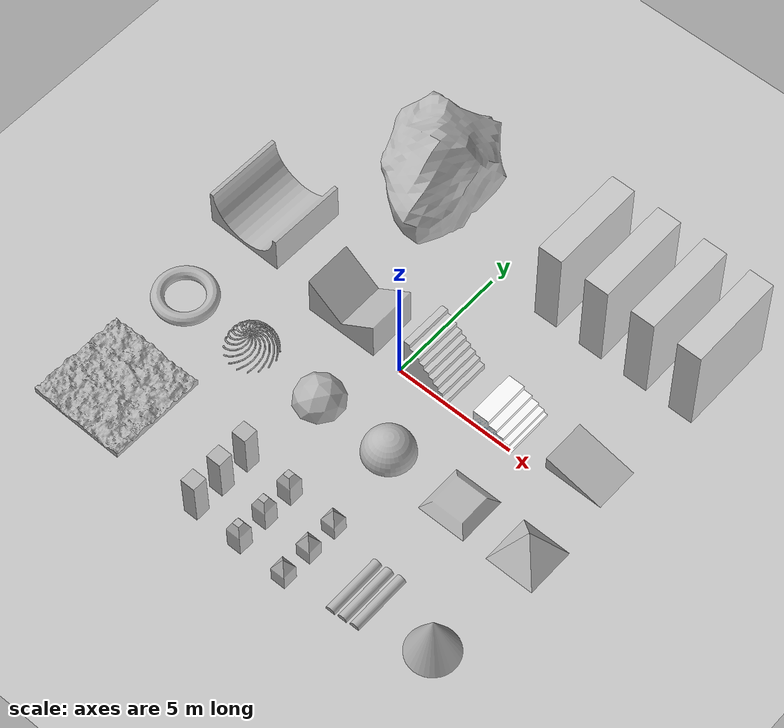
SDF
<sdf version="1.7">
 <world name="default">
  <light name="sun" type="directional">
   <pose>0 0 10 0 -0 0</pose>
   <diffuse>0.8 0.8 0.8 1</diffuse>
   <specular>0.2 0.2 0.2 1</specular>
   <attenuation>
    <range>1000</range>
    <constant>0.9</constant>
    <linear>0.01</linear>
    <quadratic>0.001</quadratic>
   </attenuation>
   <direction>-0.5 0.1 -0.9</direction>
   <spot><inner_angle>0</inner_angle><outer_angle>0</outer_angle><falloff>0</falloff></spot>
  </light>
  <model name="ground_plane">
   <static>1</static>
   <link name="link">
    <collision name="collision">
     <geometry><plane><normal>0 0 1</normal><size>100 100</size></plane></geometry>
     <surface>
      <contact><collide_bitmask>65535</collide_bitmask></contact>
      <friction><ode><mu>100</mu><mu2>50</mu2></ode></friction>
     </surface>
    </collision>
    <visual name="visual">
     <cast_shadows>0</cast_shadows>
     <geometry><plane><normal>0 0 1</normal><size>100 100</size></plane></geometry>
     <material>
      <script><uri>file://media/materials/scripts/gazebo.material</uri><name>Gazebo/Grey</name></script>
     </material>
    </visual>
   </link>
  </model>
  <gravity>0 0 -9.8</gravity>
  <magnetic_field>6e-06 2.3e-05 -4.2e-05</magnetic_field>
  <atmosphere type="adiabatic"/>
  <physics type="ode">
   <max_step_size>0.001</max_step_size>
   <real_time_factor>1</real_time_factor>
   <real_time_update_rate>1000</real_time_update_rate>
  </physics>
  <scene><ambient>0.4 0.4 0.4 1</ambient><background>0.7 0.7 0.7 1</background><shadows>1</shadows></scene>
  <spherical_coordinates>
   <surface_model>EARTH_WGS84</surface_model>
   <latitude_deg>0</latitude_deg>
   <longitude_deg>0</longitude_deg>
   <elevation>0</elevation>
   <heading_deg>0</heading_deg>
  </spherical_coordinates>
  <model name="parede">
   <link name="link">
    <collision name="collision">
     <geometry><mesh><scale>1 1 1</scale><uri>model://parede/meshes/parede.stl</uri></mesh></geometry>
    </collision>
    <visual name="visual">
     <geometry><mesh><scale>1 1 1</scale><uri>model://parede/meshes/parede.dae</uri></mesh></geometry>
    </visual>
    <inertial>
     <inertia><ixx>1</ixx><ixy>0</ixy><ixz>0</ixz><iyy>1</iyy><iyz>0</iyz><izz>1</izz></inertia>
     <mass>1</mass>
    </inertial>
   </link>
   <pose>6.49995 6.99998 2 0 -0 1.57077</pose>
  </model>
  <model name="parede_clone">
   <link name="link">
    <collision name="collision">
     <geometry><mesh><scale>1 1 1</scale><uri>model://parede/meshes/parede.stl</uri></mesh></geometry>
    </collision>
    <visual name="visual">
     <geometry><mesh><scale>1 1 1</scale><uri>model://parede/meshes/parede.dae</uri></mesh></geometry>
    </visual>
    <inertial>
     <inertia><ixx>1</ixx><ixy>0</ixy><ixz>0</ixz><iyy>1</iyy><iyz>0</iyz><izz>1</izz></inertia>
     <mass>1</mass>
    </inertial>
   </link>
   <pose>8.49996 6.99998 2 0 -0 1.57077</pose>
  </model>
  <model name="parede_clone_0">
   <link name="link">
    <collision name="collision">
     <geometry><mesh><scale>1 1 1</scale><uri>model://parede/meshes/parede.stl</uri></mesh></geometry>
    </collision>
    <visual name="visual">
     <geometry><mesh><scale>1 1 1</scale><uri>model://parede/meshes/parede.dae</uri></mesh></geometry>
    </visual>
    <inertial>
     <inertia><ixx>1</ixx><ixy>0</ixy><ixz>0</ixz><iyy>1</iyy><iyz>0</iyz><izz>1</izz></inertia>
     <mass>1</mass>
    </inertial>
   </link>
   <pose>4.49995 6.99998 2 0 -0 1.57082</pose>
  </model>
  <model name="parede_clone_0_clone">
   <link name="link">
    <collision name="collision">
     <geometry><mesh><scale>1 1 1</scale><uri>model://parede/meshes/parede.stl</uri></mesh></geometry>
    </collision>
    <visual name="visual">
     <geometry><mesh><scale>1 1 1</scale><uri>model://parede/meshes/parede.dae</uri></mesh></geometry>
    </visual>
    <inertial>
     <inertia><ixx>1</ixx><ixy>0</ixy><ixz>0</ixz><iyy>1</iyy><iyz>0</iyz><izz>1</izz></inertia>
     <mass>1</mass>
    </inertial>
   </link>
   <pose>2.46648 6.99999 2 0 -0 1.57077</pose>
  </model>
  <model name="chao_aspero">
   <link name="link">
    <collision name="collision">
     <geometry><mesh><scale>2 2 2</scale><uri>model://chao_aspero/meshes/chao_aspero.stl</uri></mesh></geometry>
    </collision>
    <visual name="visual">
     <geometry><mesh><scale>2 2 2</scale><uri>model://chao_aspero/meshes/chao_aspero.dae</uri></mesh></geometry>
    </visual>
    <inertial>
     <inertia><ixx>1</ixx><ixy>0</ixy><ixz>0</ixz><iyy>1</iyy><iyz>0</iyz><izz>1</izz></inertia>
     <mass>1</mass>
    </inertial>
   </link>
   <pose>-6.94119 -7.0248 0.199996 -2e-06 -4e-06 -0.010647</pose>
  </model>
  <model name="pilar">
   <link name="link">
    <collision name="collision">
     <geometry><mesh><scale>1 1 1</scale><uri>model://pilar/meshes/pilar.stl</uri></mesh></geometry>
    </collision>
    <visual name="visual">
     <geometry><mesh><scale>1 1 1</scale><uri>model://pilar/meshes/pilar.dae</uri></mesh></geometry>
    </visual>
    <inertial>
     <inertia><ixx>1</ixx><ixy>0</ixy><ixz>0</ixz><iyy>1</iyy><iyz>0</iyz><izz>1</izz></inertia>
     <mass>1</mass>
    </inertial>
   </link>
   <pose>-1.49833 -8.74981 0.999999 0 -2e-06 0.002334</pose>
  </model>
  <model name="pilar_clone">
   <link name="link">
    <collision name="collision">
     <geometry><mesh><scale>1 1 1</scale><uri>model://pilar/meshes/pilar.stl</uri></mesh></geometry>
    </collision>
    <visual name="visual">
     <geometry><mesh><scale>1 1 1</scale><uri>model://pilar/meshes/pilar.dae</uri></mesh></geometry>
    </visual>
    <inertial>
     <inertia><ixx>1</ixx><ixy>0</ixy><ixz>0</ixz><iyy>1</iyy><iyz>0</iyz><izz>1</izz></inertia>
     <mass>1</mass>
    </inertial>
   </link>
   <pose>-1.4958 -7.49995 0.999998 -1e-06 -1e-06 -0.00718</pose>
  </model>
  <model name="pilar_2">
   <link name="link">
    <collision name="collision">
     <geometry><mesh><scale>1 1 1</scale><uri>model://pilar_2/meshes/pilar_2.stl</uri></mesh></geometry>
    </collision>
    <visual name="visual">
     <geometry><mesh><scale>1 1 1</scale><uri>model://pilar_2/meshes/pilar_2.dae</uri></mesh></geometry>
    </visual>
    <inertial>
     <inertia><ixx>1</ixx><ixy>0</ixy><ixz>0</ixz><iyy>1</iyy><iyz>0</iyz><izz>1</izz></inertia>
     <mass>1</mass>
    </inertial>
   </link>
   <pose>0.501119 -8.75 0.700001 -1e-06 1e-06 0.004817</pose>
  </model>
  <model name="pilar_2_clone">
   <link name="link">
    <collision name="collision">
     <geometry><mesh><scale>1 1 1</scale><uri>model://pilar_2/meshes/pilar_2.stl</uri></mesh></geometry>
    </collision>
    <visual name="visual">
     <geometry><mesh><scale>1 1 1</scale><uri>model://pilar_2/meshes/pilar_2.dae</uri></mesh></geometry>
    </visual>
    <inertial>
     <inertia><ixx>1</ixx><ixy>0</ixy><ixz>0</ixz><iyy>1</iyy><iyz>0</iyz><izz>1</izz></inertia>
     <mass>1</mass>
    </inertial>
   </link>
   <pose>0.499999 -6.25 0.7 0 -0 0.002256</pose>
  </model>
  <model name="pilar_3">
   <link name="link">
    <collision name="collision">
     <geometry><mesh><scale>1 1 1</scale><uri>model://pilar_3/meshes/pilar_3.stl</uri></mesh></geometry>
    </collision>
    <visual name="visual">
     <geometry><mesh><scale>1 1 1</scale><uri>model://pilar_3/meshes/pilar_3.dae</uri></mesh></geometry>
    </visual>
    <inertial>
     <inertia><ixx>1</ixx><ixy>0</ixy><ixz>0</ixz><iyy>1</iyy><iyz>0</iyz><izz>1</izz></inertia>
     <mass>1</mass>
    </inertial>
   </link>
   <pose>2.50002 -8.75003 0.7 0 -0 0.006566</pose>
  </model>
  <model name="pilar_3_clone">
   <link name="link">
    <collision name="collision">
     <geometry><mesh><scale>1 1 1</scale><uri>model://pilar_3/meshes/pilar_3.stl</uri></mesh></geometry>
    </collision>
    <visual name="visual">
     <geometry><mesh><scale>1 1 1</scale><uri>model://pilar_3/meshes/pilar_3.dae</uri></mesh></geometry>
    </visual>
    <inertial>
     <inertia><ixx>1</ixx><ixy>0</ixy><ixz>0</ixz><iyy>1</iyy><iyz>0</iyz><izz>1</izz></inertia>
     <mass>1</mass>
    </inertial>
   </link>
   <pose>2.50002 -7.50003 0.7 0 -1e-06 0.005315</pose>
  </model>
  <model name="lombada">
   <link name="link">
    <collision name="collision">
     <geometry><mesh><scale>0.8 0.8 0.8</scale><uri>model://lombada/meshes/lombada.stl</uri></mesh></geometry>
    </collision>
    <visual name="visual">
     <geometry><mesh><scale>0.8 0.8 0.8</scale><uri>model://lombada/meshes/lombada.dae</uri></mesh></geometry>
    </visual>
    <inertial>
     <inertia><ixx>1</ixx><ixy>0</ixy><ixz>0</ixz><iyy>1</iyy><iyz>0</iyz><izz>1</izz></inertia>
     <mass>1</mass>
    </inertial>
   </link>
   <pose>4.5 -7.4776 -1e-06 1e-06 1e-06 0.00715</pose>
  </model>
  <model name="rampa_dupla">
   <link name="link">
    <collision name="collision">
     <geometry><mesh><scale>1 1 1</scale><uri>model://rampa_dupla/meshes/rampa_dupla.stl</uri></mesh></geometry>
    </collision>
    <visual name="visual">
     <geometry><mesh><scale>1 1 1</scale><uri>model://rampa_dupla/meshes/rampa_dupla.dae</uri></mesh></geometry>
    </visual>
    <inertial>
     <inertia><ixx>1</ixx><ixy>0</ixy><ixz>0</ixz><iyy>1</iyy><iyz>0</iyz><izz>1</izz></inertia>
     <mass>1</mass>
    </inertial>
   </link>
   <pose>-2.60038 0.84191 -0.45 0 0 -1.56672</pose>
  </model>
  <model name="rampa_dupla_2">
   <link name="link">
    <collision name="collision">
     <geometry>
      <mesh><scale>0.8 0.8 0.8</scale><uri>model://rampa_dupla_2/meshes/rampa_dupla_2.stl</uri></mesh>
     </geometry>
    </collision>
    <visual name="visual">
     <geometry>
      <mesh><scale>0.8 0.8 0.8</scale><uri>model://rampa_dupla_2/meshes/rampa_dupla_2.dae</uri></mesh>
     </geometry>
    </visual>
    <inertial>
     <inertia><ixx>1</ixx><ixy>0</ixy><ixz>0</ixz><iyy>1</iyy><iyz>0</iyz><izz>1</izz></inertia>
     <mass>1</mass>
    </inertial>
   </link>
   <pose>-7.31552 1.59318 0.799992 0 -5e-06 -0.016277</pose>
  </model>
  <model name="escada">
   <link name="link">
    <collision name="collision">
     <geometry><mesh><scale>1.2 1.2 1.2</scale><uri>model://escada/meshes/escada.stl</uri></mesh></geometry>
    </collision>
    <visual name="visual">
     <geometry><mesh><scale>1.2 1.2 1.2</scale><uri>model://escada/meshes/escada.dae</uri></mesh></geometry>
    </visual>
    <inertial>
     <inertia><ixx>1</ixx><ixy>0</ixy><ixz>0</ixz><iyy>1</iyy><iyz>0</iyz><izz>1</izz></inertia>
     <mass>1</mass>
    </inertial>
   </link>
   <pose>4.28842 1.02116 -7e-06 -3e-06 -0 1.57075</pose>
  </model>
  <model name="escada_2">
   <link name="link">
    <collision name="collision">
     <geometry><mesh><scale>1 1 1</scale><uri>model://escada_2/meshes/escada_2.stl</uri></mesh></geometry>
    </collision>
    <visual name="visual">
     <geometry><mesh><scale>1 1 1</scale><uri>model://escada_2/meshes/escada_2.dae</uri></mesh></geometry>
    </visual>
    <inertial>
     <inertia><ixx>1</ixx><ixy>0</ixy><ixz>0</ixz><iyy>1</iyy><iyz>0</iyz><izz>1</izz></inertia>
     <mass>1</mass>
    </inertial>
   </link>
   <pose>1.17183 1.01222 0.999999 0 -1e-06 3.1334</pose>
  </model>
  <model name="lombada_clone">
   <link name="link">
    <collision name="collision">
     <geometry><mesh><scale>0.8 0.8 0.8</scale><uri>model://lombada/meshes/lombada.stl</uri></mesh></geometry>
    </collision>
    <visual name="visual">
     <geometry><mesh><scale>0.8 0.8 0.8</scale><uri>model://lombada/meshes/lombada.dae</uri></mesh></geometry>
    </visual>
    <inertial>
     <inertia><ixx>1</ixx><ixy>0</ixy><ixz>0</ixz><iyy>1</iyy><iyz>0</iyz><izz>1</izz></inertia>
     <mass>1</mass>
    </inertial>
   </link>
   <pose>5 -7.44317 -1e-06 1e-06 1e-06 0.00584</pose>
  </model>
  <model name="prisma_trapezoidal">
   <link name="link">
    <collision name="collision">
     <geometry>
      <mesh><scale>1 1 1</scale><uri>model://prisma_trapezoidal/meshes/prisma_trapezoidal.stl</uri></mesh>
     </geometry>
    </collision>
    <visual name="visual">
     <geometry>
      <mesh><scale>1 1 1</scale><uri>model://prisma_trapezoidal/meshes/prisma_trapezoidal.dae</uri></mesh>
     </geometry>
    </visual>
    <inertial>
     <inertia><ixx>1</ixx><ixy>0</ixy><ixz>0</ixz><iyy>1</iyy><iyz>0</iyz><izz>1</izz></inertia>
     <mass>1</mass>
    </inertial>
   </link>
   <pose>5.1 -2.75 0.001025 -2e-06 -1e-06 0.003474</pose>
  </model>
  <model name="meia_esfera">
   <link name="link">
    <collision name="collision">
     <geometry><mesh><scale>1 1 1</scale><uri>model://meia_esfera/meshes/meia_esfera.stl</uri></mesh></geometry>
    </collision>
    <visual name="visual">
     <geometry><mesh><scale>1 1 1</scale><uri>model://meia_esfera/meshes/meia_esfera.dae</uri></mesh></geometry>
    </visual>
    <inertial>
     <inertia><ixx>1</ixx><ixy>0</ixy><ixz>0</ixz><iyy>1</iyy><iyz>0</iyz><izz>1</izz></inertia>
     <mass>1</mass>
    </inertial>
   </link>
   <pose>1.9 -2.75 -1e-06 3e-06 2e-06 -0.000544</pose>
  </model>
  <model name="ico_esfera">
   <link name="link">
    <collision name="collision">
     <geometry><mesh><scale>1 1 1</scale><uri>model://ico_esfera/meshes/ico_esfera.stl</uri></mesh></geometry>
    </collision>
    <visual name="visual">
     <geometry><mesh><scale>1 1 1</scale><uri>model://ico_esfera/meshes/ico_esfera.dae</uri></mesh></geometry>
    </visual>
    <inertial>
     <inertia><ixx>1</ixx><ixy>0</ixy><ixz>0</ixz><iyy>1</iyy><iyz>0</iyz><izz>1</izz></inertia>
     <mass>1</mass>
    </inertial>
   </link>
   <pose>-1.3 -2.75 -3e-06 8e-06 -0 0.008542</pose>
  </model>
  <model name="esfera_personalizada_2">
   <link name="link">
    <collision name="collision">
     <geometry>
      <mesh><scale>1 1 1</scale><uri>model://esfera_personalizada_2/meshes/esfera_personalizada_2.stl</uri></mesh>
     </geometry>
    </collision>
    <visual name="visual">
     <geometry>
      <mesh><scale>1 1 1</scale><uri>model://esfera_personalizada_2/meshes/esfera_personalizada_2.dae</uri></mesh>
     </geometry>
    </visual>
    <inertial>
     <inertia><ixx>1</ixx><ixy>0</ixy><ixz>0</ixz><iyy>1</iyy><iyz>0</iyz><izz>1</izz></inertia>
     <mass>1</mass>
    </inertial>
   </link>
   <pose>-4.5 -2.75 0.019542 -4e-06 -3e-06 -0.000446</pose>
  </model>
  <model name="piramide">
   <link name="link">
    <collision name="collision">
     <geometry><mesh><scale>1 1 1</scale><uri>model://piramide/meshes/piramide.stl</uri></mesh></geometry>
    </collision>
    <visual name="visual">
     <geometry><mesh><scale>1 1 1</scale><uri>model://piramide/meshes/piramide.dae</uri></mesh></geometry>
    </visual>
    <inertial>
     <inertia><ixx>1</ixx><ixy>0</ixy><ixz>0</ixz><iyy>1</iyy><iyz>0</iyz><izz>1</izz></inertia>
     <mass>1</mass>
    </inertial>
   </link>
   <pose>8.10477 -2.74998 0.999998 -0 -2e-06 1e-06</pose>
  </model>
  <model name="anel">
   <link name="link">
    <collision name="collision">
     <geometry><mesh><scale>1 1 1</scale><uri>model://anel/meshes/anel.stl</uri></mesh></geometry>
    </collision>
    <visual name="visual">
     <geometry><mesh><scale>1 1 1</scale><uri>model://anel/meshes/anel.dae</uri></mesh></geometry>
    </visual>
    <inertial>
     <inertia><ixx>1</ixx><ixy>0</ixy><ixz>0</ixz><iyy>1</iyy><iyz>0</iyz><izz>1</izz></inertia>
     <mass>1</mass>
    </inertial>
   </link>
   <pose>-7.69333 -2.75 0.249999 -1e-06 -1e-06 0.388957</pose>
  </model>
  <model name="pilar_clone_clone">
   <link name="link">
    <collision name="collision">
     <geometry><mesh><scale>1 1 1</scale><uri>model://pilar/meshes/pilar.stl</uri></mesh></geometry>
    </collision>
    <visual name="visual">
     <geometry><mesh><scale>1 1 1</scale><uri>model://pilar/meshes/pilar.dae</uri></mesh></geometry>
    </visual>
    <inertial>
     <inertia><ixx>1</ixx><ixy>0</ixy><ixz>0</ixz><iyy>1</iyy><iyz>0</iyz><izz>1</izz></inertia>
     <mass>1</mass>
    </inertial>
   </link>
   <pose>-1.49992 -6.24995 1 -2e-06 -0 -0.007179</pose>
  </model>
  <model name="pilar_2_clone_clone">
   <link name="link">
    <collision name="collision">
     <geometry><mesh><scale>1 1 1</scale><uri>model://pilar_2/meshes/pilar_2.stl</uri></mesh></geometry>
    </collision>
    <visual name="visual">
     <geometry><mesh><scale>1 1 1</scale><uri>model://pilar_2/meshes/pilar_2.dae</uri></mesh></geometry>
    </visual>
    <inertial>
     <inertia><ixx>1</ixx><ixy>0</ixy><ixz>0</ixz><iyy>1</iyy><iyz>0</iyz><izz>1</izz></inertia>
     <mass>1</mass>
    </inertial>
   </link>
   <pose>0.5 -7.5 0.700001 -1e-06 1e-06 0.002257</pose>
  </model>
  <model name="pilar_3_clone_clone">
   <link name="link">
    <collision name="collision">
     <geometry><mesh><scale>1 1 1</scale><uri>model://pilar_3/meshes/pilar_3.stl</uri></mesh></geometry>
    </collision>
    <visual name="visual">
     <geometry><mesh><scale>1 1 1</scale><uri>model://pilar_3/meshes/pilar_3.dae</uri></mesh></geometry>
    </visual>
    <inertial>
     <inertia><ixx>1</ixx><ixy>0</ixy><ixz>0</ixz><iyy>1</iyy><iyz>0</iyz><izz>1</izz></inertia>
     <mass>1</mass>
    </inertial>
   </link>
   <pose>2.50002 -6.25002 0.7 0 -0 0.005306</pose>
  </model>
  <model name="lombada_clone_clone">
   <link name="link">
    <collision name="collision">
     <geometry><mesh><scale>0.8 0.8 0.8</scale><uri>model://lombada/meshes/lombada.stl</uri></mesh></geometry>
    </collision>
    <visual name="visual">
     <geometry><mesh><scale>0.8 0.8 0.8</scale><uri>model://lombada/meshes/lombada.dae</uri></mesh></geometry>
    </visual>
    <inertial>
     <inertia><ixx>1</ixx><ixy>0</ixy><ixz>0</ixz><iyy>1</iyy><iyz>0</iyz><izz>1</izz></inertia>
     <mass>1</mass>
    </inertial>
   </link>
   <pose>5.5 -7.40009 -1e-06 1e-06 1e-06 0.00584</pose>
  </model>
  <model name="cone">
   <link name="link">
    <collision name="collision">
     <geometry><mesh><scale>1 1 1</scale><uri>model://cone/meshes/cone.stl</uri></mesh></geometry>
    </collision>
    <visual name="visual">
     <geometry><mesh><scale>1 1 1</scale><uri>model://cone/meshes/cone.dae</uri></mesh></geometry>
    </visual>
    <inertial>
     <inertia><ixx>1</ixx><ixy>0</ixy><ixz>0</ixz><iyy>1</iyy><iyz>0</iyz><izz>1</izz></inertia>
     <mass>1</mass>
    </inertial>
   </link>
   <pose>8.02715 -7.54459 1 0 -0 0.006528</pose>
  </model>
  <model name="rampa">
   <link name="link">
    <collision name="collision">
     <geometry><mesh><scale>0.6 0.6 0.6</scale><uri>model://rampa/meshes/rampa.stl</uri></mesh></geometry>
    </collision>
    <visual name="visual">
     <geometry><mesh><scale>0.6 0.6 0.6</scale><uri>model://rampa/meshes/rampa.dae</uri></mesh></geometry>
    </visual>
    <inertial>
     <inertia><ixx>1</ixx><ixy>0</ixy><ixz>0</ixz><iyy>1</iyy><iyz>0</iyz><izz>1</izz></inertia>
     <mass>1</mass>
    </inertial>
   </link>
   <pose>7.75842 0.91724 0.299998 -0 -2e-06 -3.1415</pose>
  </model>
  <model name="rocha">
   <link name="link">
    <collision name="collision">
     <geometry><mesh><scale>3.5 3.5 3.5</scale><uri>model://rocha/meshes/rocha.stl</uri></mesh></geometry>
    </collision>
    <visual name="visual">
     <geometry><mesh><scale>3.5 3.5 3.5</scale><uri>model://rocha/meshes/rocha.dae</uri></mesh></geometry>
    </visual>
    <inertial>
     <inertia><ixx>1</ixx><ixy>0</ixy><ixz>0</ixz><iyy>1</iyy><iyz>0</iyz><izz>1</izz></inertia>
     <mass>1</mass>
    </inertial>
   </link>
   <pose>-3.85719 6.4591 1.87723 0.447812 0.222182 0.168064</pose>
  </model>
 </world>
</sdf>
